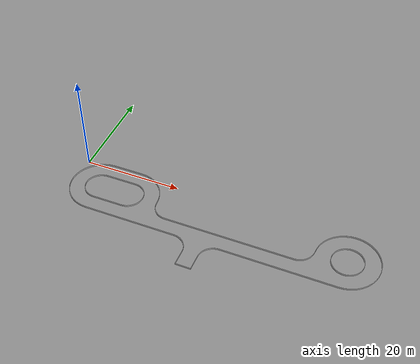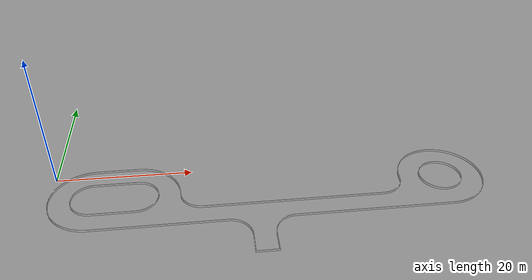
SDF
<?xml version="1.0" ?>
<sdf version="1.4">
  <model name="track_curb">
    <static>true</static>
    <link name="link">
      <inertial>
        <pose>0 0 1 0 0 0</pose>
        <mass>5</mass>
        <inertia>
          <ixx>0.833</ixx>
          <iyy>0.833</iyy>
          <izz>0.833</izz>
          <ixy>0</ixy>
          <ixz>0</ixz>
        </inertia>
      </inertial>
      <collision name="collision">
        <pose>0 0 1 0 0 0</pose>
        <geometry>
          <mesh>
            <uri>model://track_curb/meshes/track.dae</uri>
            <scale>0.3048 0.3048 0.3048</scale>
          </mesh>
        </geometry>
      </collision>

      <visual name="visual">
        <pose>0 0 1 0 0 0</pose>
        <geometry>
          <mesh>
            <uri>model://track_curb/meshes/track.dae</uri>
            <scale>0.3048 0.3048 0.3048</scale>
          </mesh>
        </geometry>
        <material>
          <script>
            <uri>model://track_curb/materials/scripts</uri>
            <uri>model://track_curb/materials/textures/</uri>
            <name>white</name>
          </script>
        </material>
      </visual>
    </link>
  </model>
</sdf>
